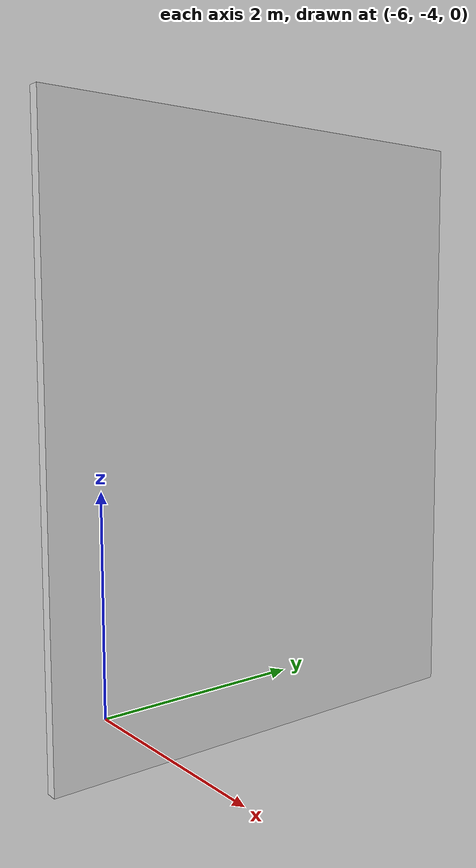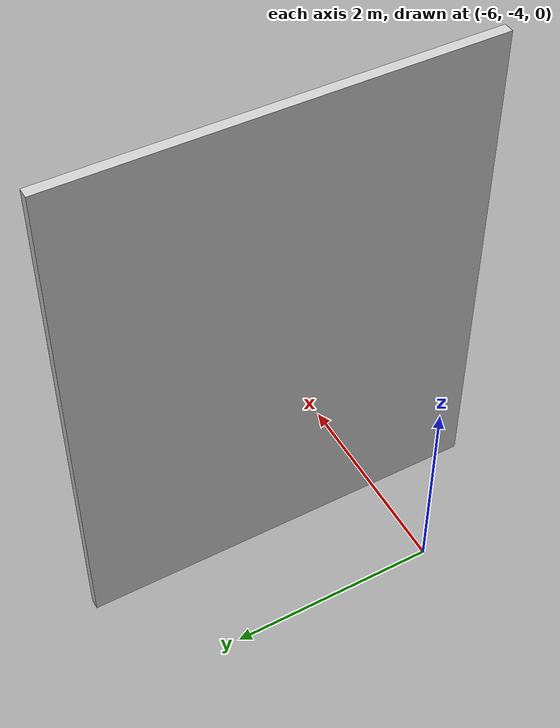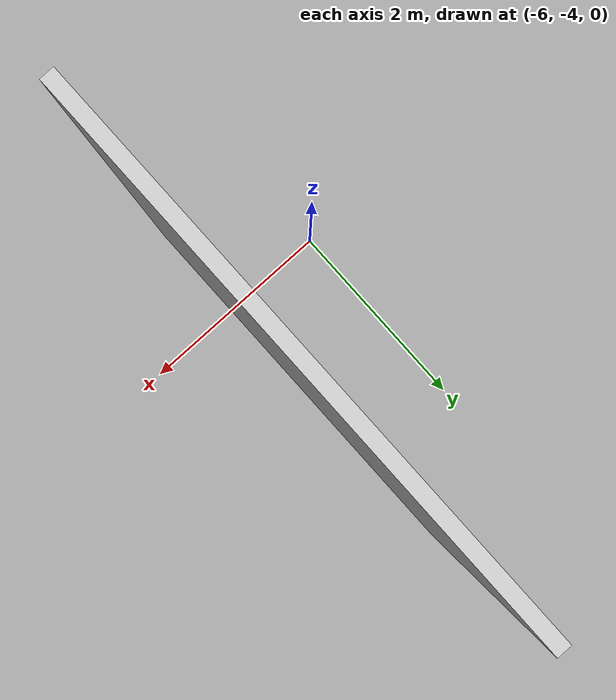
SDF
<sdf version='1.7'>
    <!-- south wall with door -->
    <model name='south_wall1'>
        <static>true</static>
        <link name='link'>
            <collision name='collision'>
                <geometry>
                    <box>
                        <size>0.1 4 5</size>
                    </box>
                </geometry>
            </collision>
            <visual name='visual'>
                <geometry>
                    <box>
                        <size>0.1 4 5</size>
                    </box>
                </geometry>
                <material>
                    <diffuse>0.8 0.8 0.8 1</diffuse>
                    <script>
                        <uri>model://walls/wall1.material</uri>
                        <name>WallPaper1</name>
                    </script>
                </material>
            </visual>
        </link>
        <pose>-5 -3 2.5 0 -0 0</pose>
    </model>
</sdf>
